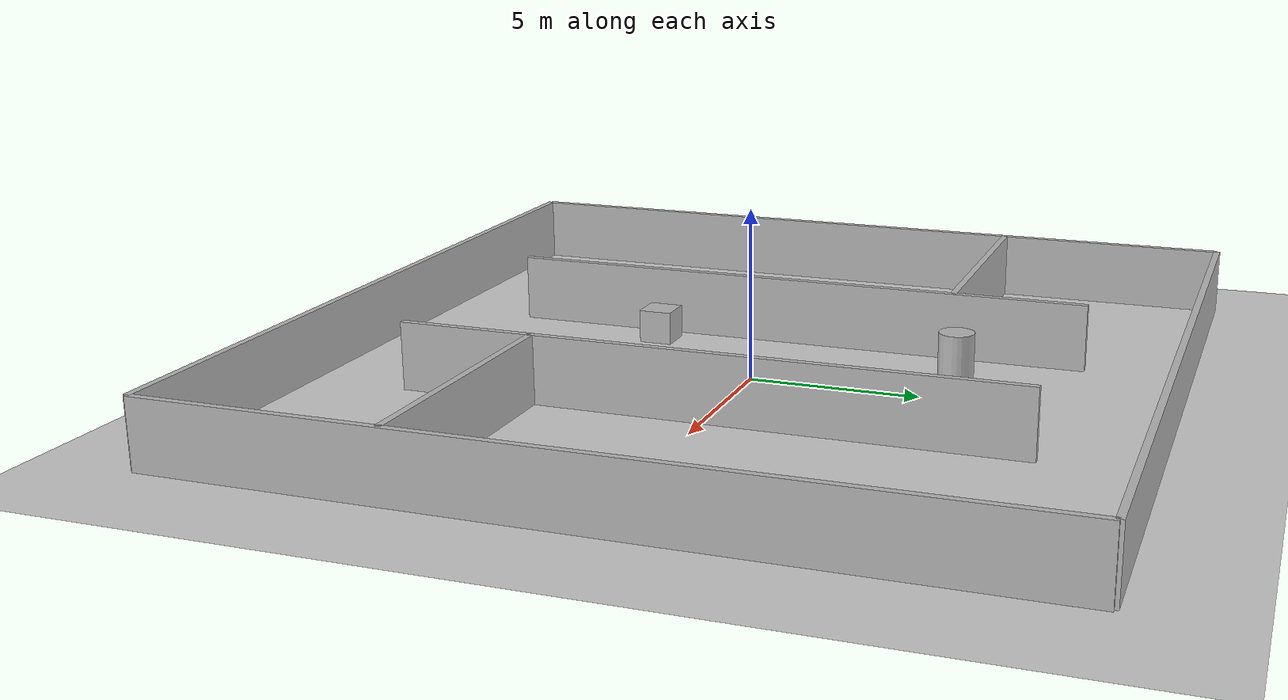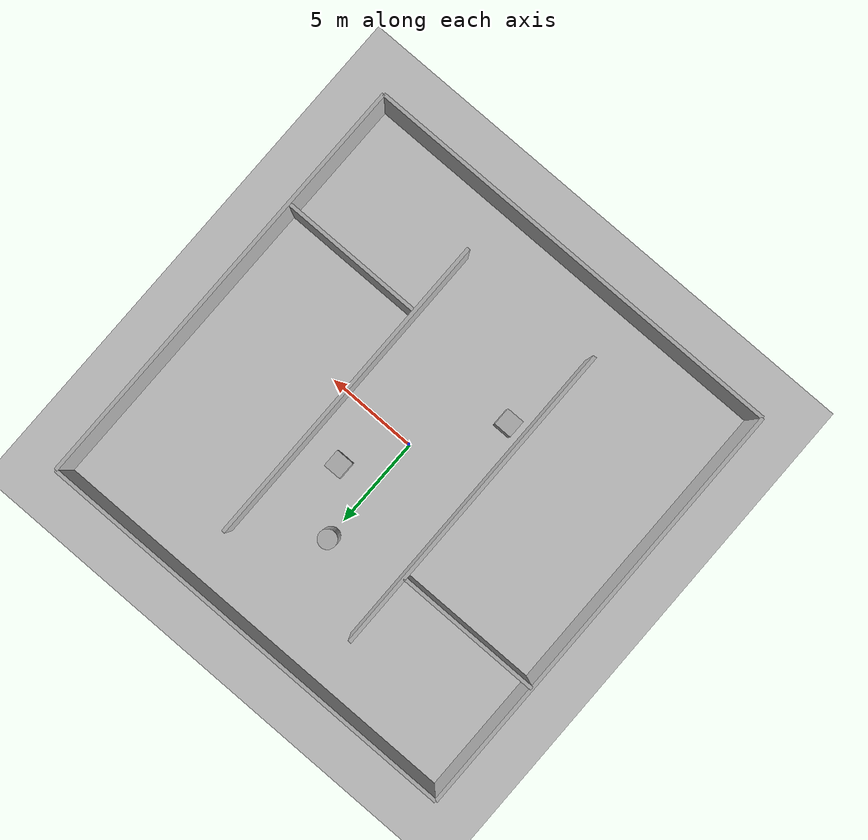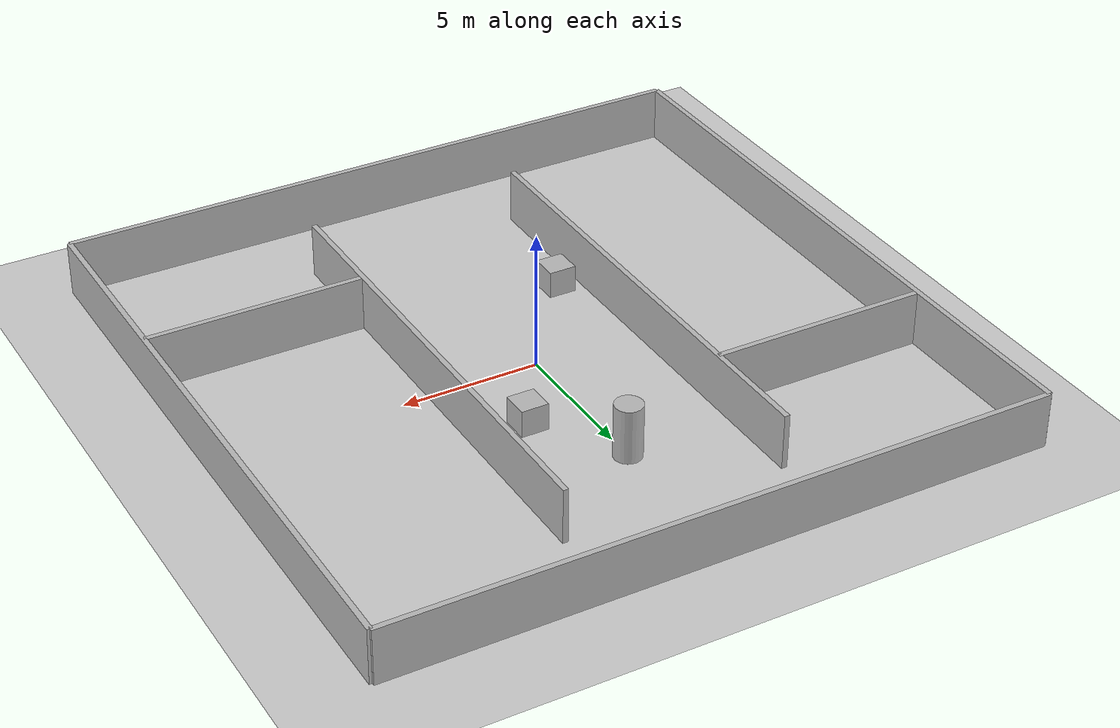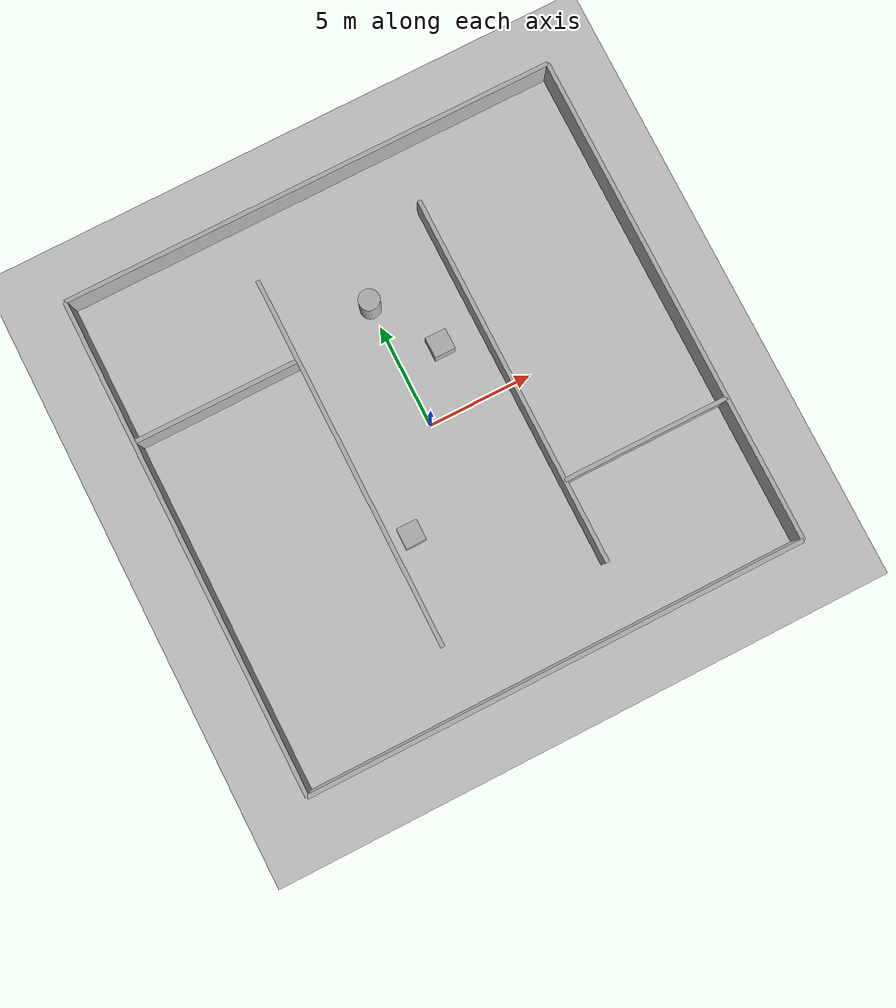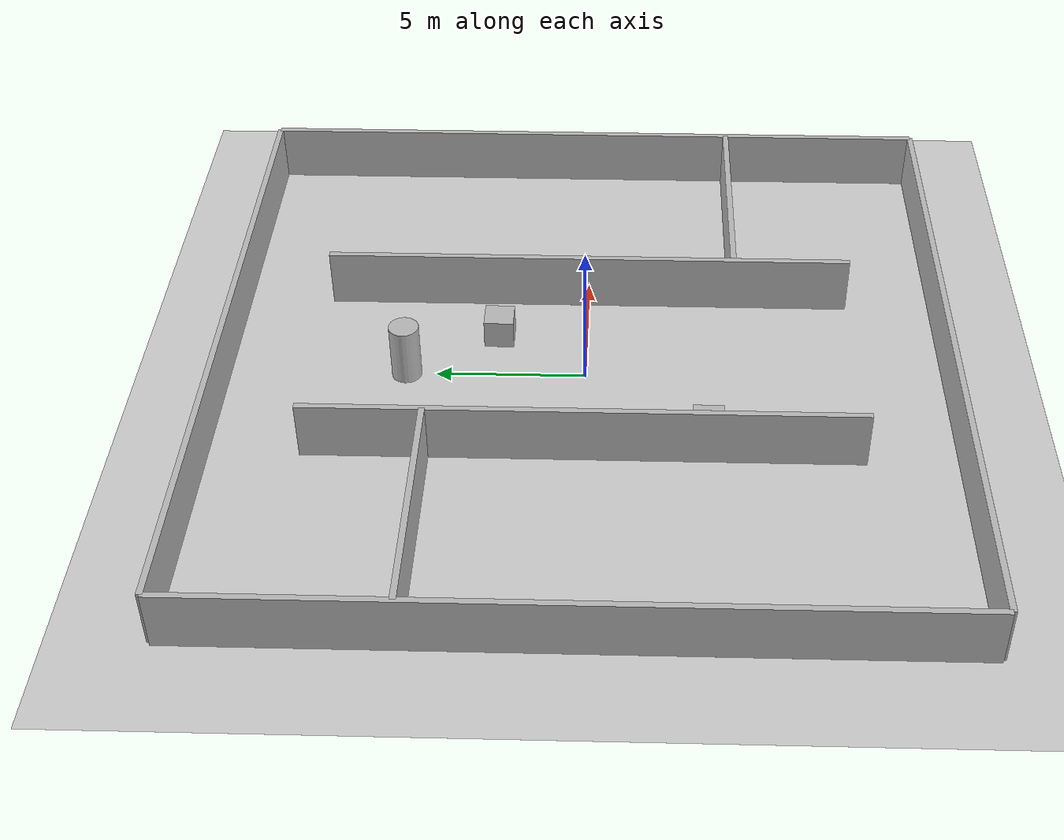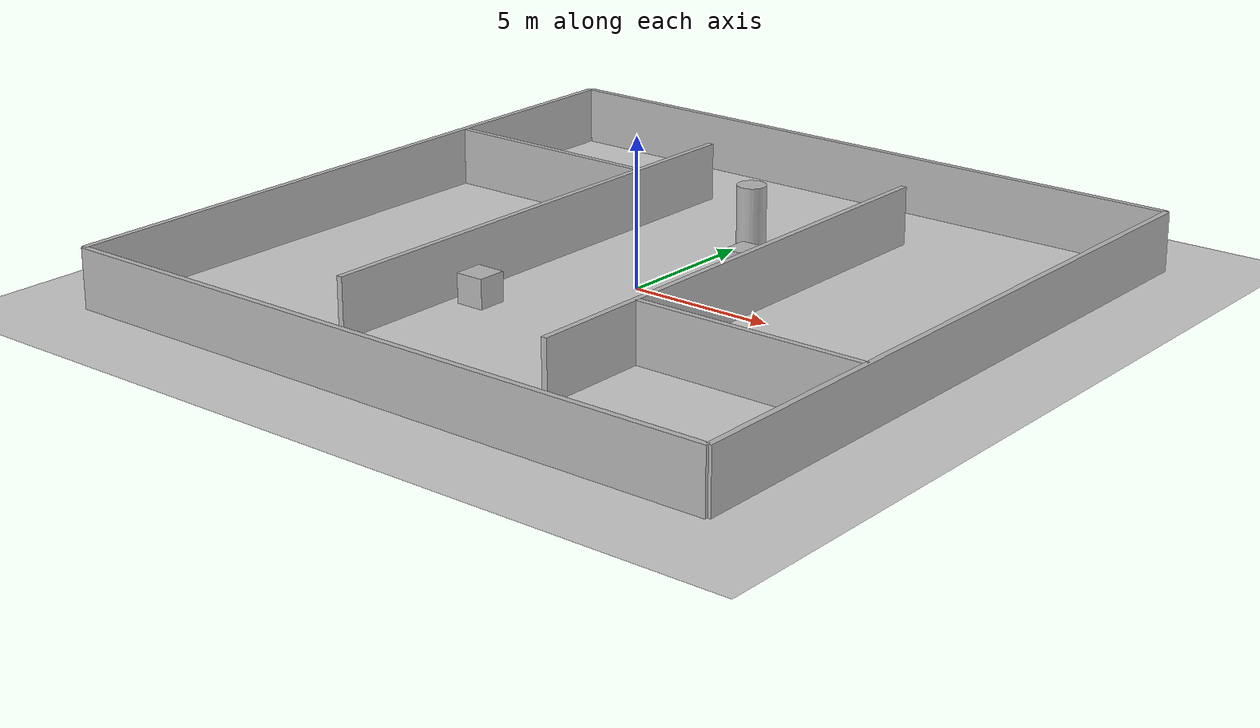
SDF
<?xml version="1.0" ?>
<sdf version="1.6">
<world name="maze_nav">

  <!-- Physics -->
  <physics type="ode">
    <max_step_size>0.001</max_step_size>
    <real_time_factor>1</real_time_factor>
  </physics>

  <!-- Sun -->
  <include>
    <uri>model://sun</uri>
  </include>

  <!-- Ground -->
  <include>
    <uri>model://ground_plane</uri>
  </include>

  <!-- ===== OUTER ARENA ===== -->

  <model name="north_wall">
    <static>true</static>
    <pose>0 12 1 0 0 0</pose>
    <link name="link">
      <collision name="c">
        <geometry>
          <box><size>24 0.2 2</size></box>
        </geometry>
      </collision>
      <visual name="v">
        <geometry>
          <box><size>24 0.2 2</size></box>
        </geometry>
      </visual>
    </link>
  </model>

  <model name="south_wall">
    <static>true</static>
    <pose>0 -12 1 0 0 0</pose>
    <link name="link">
      <collision name="c">
        <geometry>
          <box><size>24 0.2 2</size></box>
        </geometry>
      </collision>
      <visual name="v">
        <geometry>
          <box><size>24 0.2 2</size></box>
        </geometry>
      </visual>
    </link>
  </model>

  <model name="east_wall">
    <static>true</static>
    <pose>12 0 1 0 0 0</pose>
    <link name="link">
      <collision name="c">
        <geometry>
          <box><size>0.2 24 2</size></box>
        </geometry>
      </collision>
      <visual name="v">
        <geometry>
          <box><size>0.2 24 2</size></box>
        </geometry>
      </visual>
    </link>
  </model>

  <model name="west_wall">
    <static>true</static>
    <pose>-12 0 1 0 0 0</pose>
    <link name="link">
      <collision name="c">
        <geometry>
          <box><size>0.2 24 2</size></box>
        </geometry>
      </collision>
      <visual name="v">
        <geometry>
          <box><size>0.2 24 2</size></box>
        </geometry>
      </visual>
    </link>
  </model>

  <!-- ===== MAIN CORRIDOR ===== -->

  <model name="corridor_wall_1">
    <static>true</static>
    <pose>-4 0 1 0 0 0</pose>
    <link name="link">
      <collision name="c">
        <geometry>
          <box><size>0.2 18 2</size></box>
        </geometry>
      </collision>
      <visual name="v">
        <geometry>
          <box><size>0.2 18 2</size></box>
        </geometry>
      </visual>
    </link>
  </model>

  <model name="corridor_wall_2">
    <static>true</static>
    <pose>4 0 1 0 0 0</pose>
    <link name="link">
      <collision name="c">
        <geometry>
          <box><size>0.2 18 2</size></box>
        </geometry>
      </collision>
      <visual name="v">
        <geometry>
          <box><size>0.2 18 2</size></box>
        </geometry>
      </visual>
    </link>
  </model>

  <!-- ===== ROOMS ===== -->

  <model name="room_wall_1">
    <static>true</static>
    <pose>-8 5 1 0 0 0</pose>
    <link name="link">
      <collision name="c">
        <geometry>
          <box><size>8 0.2 2</size></box>
        </geometry>
      </collision>
      <visual name="v">
        <geometry>
          <box><size>8 0.2 2</size></box>
        </geometry>
      </visual>
    </link>
  </model>

  <model name="room_wall_2">
    <static>true</static>
    <pose>8 -5 1 0 0 0</pose>
    <link name="link">
      <collision name="c">
        <geometry>
          <box><size>8 0.2 2</size></box>
        </geometry>
      </collision>
      <visual name="v">
        <geometry>
          <box><size>8 0.2 2</size></box>
        </geometry>
      </visual>
    </link>
  </model>

  <!-- ===== OBSTACLES ===== -->

  <model name="box1">
    <static>true</static>
    <pose>2 3 0.5 0 0 0</pose>
    <link name="link">
      <collision name="c">
        <geometry>
          <box><size>1 1 1</size></box>
        </geometry>
      </collision>
      <visual name="v">
        <geometry>
          <box><size>1 1 1</size></box>
        </geometry>
      </visual>
    </link>
  </model>

  <model name="box2">
    <static>true</static>
    <pose>-3 -4 0.5 0 0 0</pose>
    <link name="link">
      <collision name="c">
        <geometry>
          <box><size>1 1 1</size></box>
        </geometry>
      </collision>
      <visual name="v">
        <geometry>
          <box><size>1 1 1</size></box>
        </geometry>
      </visual>
    </link>
  </model>

  <model name="pillar">
    <static>true</static>
    <pose>0 6 1 0 0 0</pose>
    <link name="link">
      <collision name="c">
        <geometry>
          <cylinder>
            <radius>0.5</radius>
            <length>2</length>
          </cylinder>
        </geometry>
      </collision>
      <visual name="v">
        <geometry>
          <cylinder>
            <radius>0.5</radius>
            <length>2</length>
          </cylinder>
        </geometry>
      </visual>
    </link>
  </model>

</world>
</sdf>
